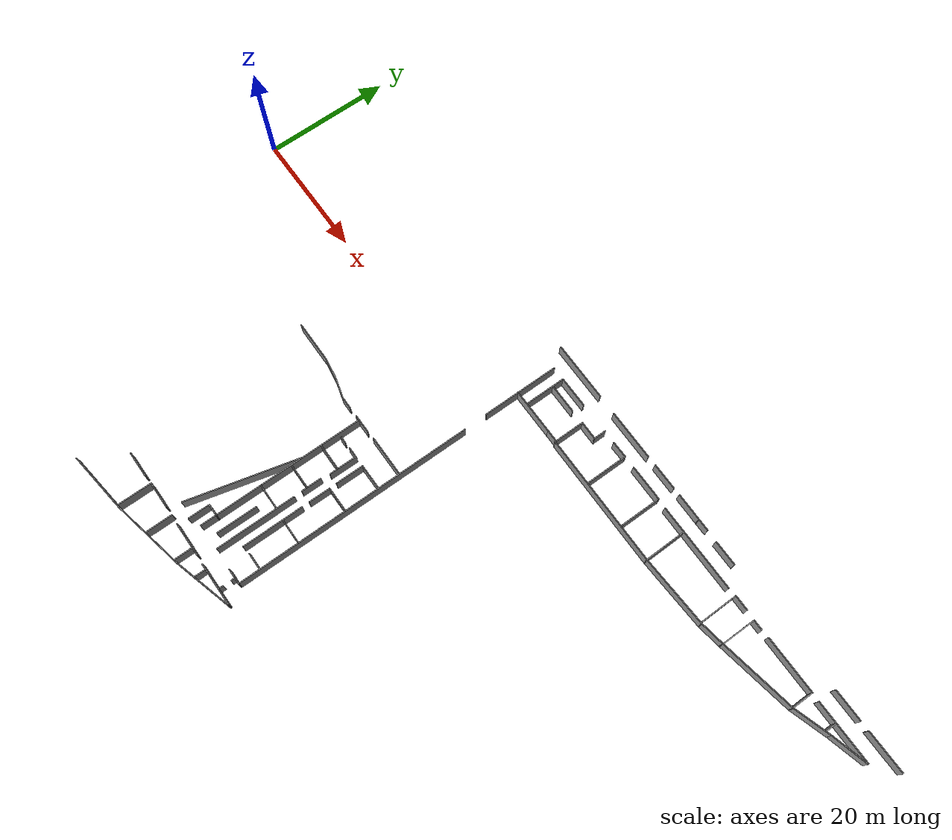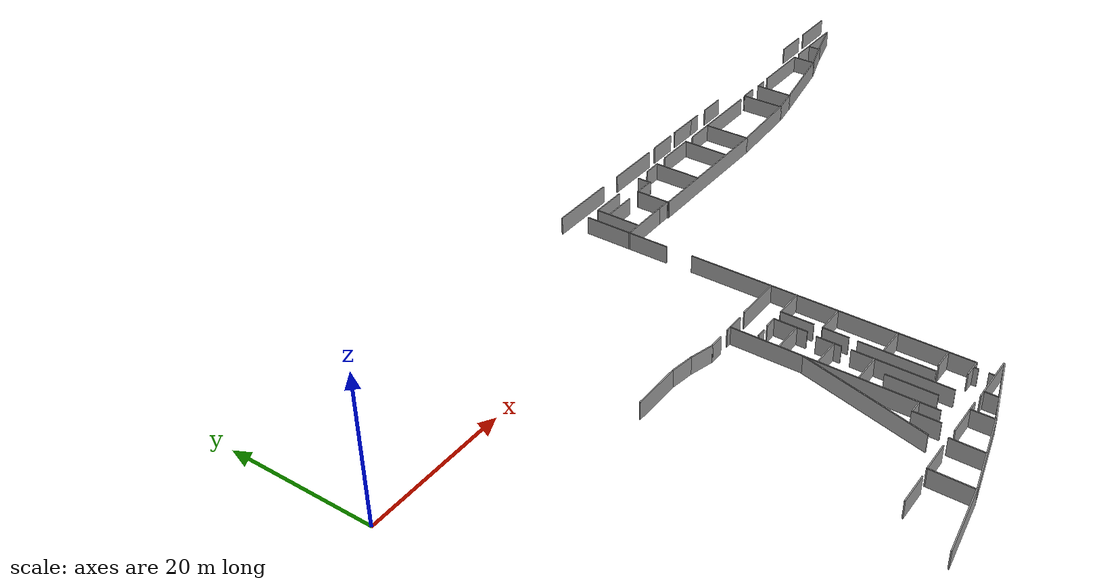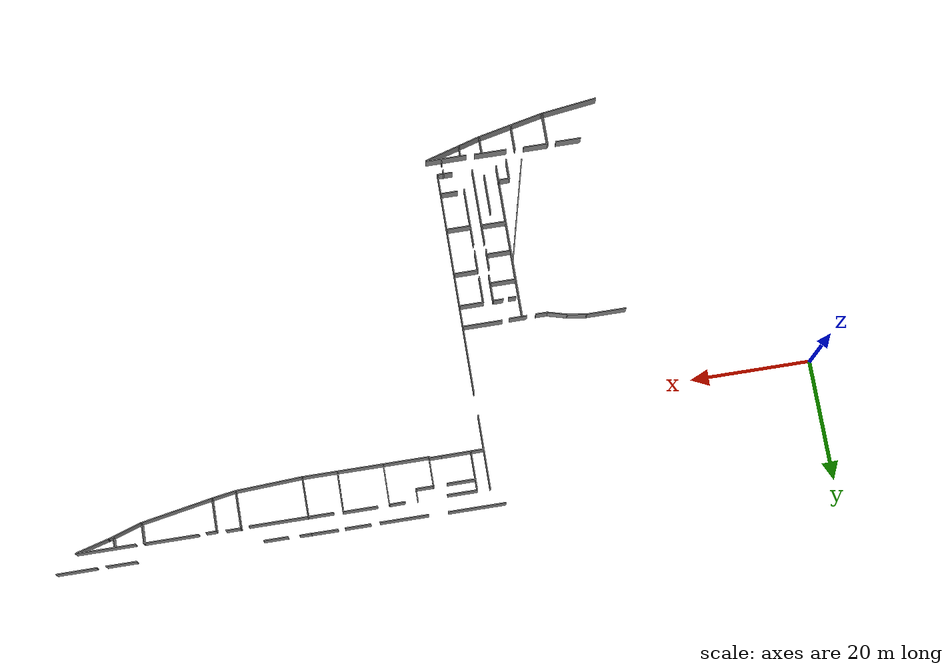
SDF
<sdf version="1.6">
 <model name="ensta_portes">
  <pose>1.28297 8.11006 0 0 -0 0</pose>
  <link name="Wall_101">
   <collision name="Wall_101_Collision">
    <geometry><box><size>9.75 0.15 2.5</size></box></geometry>
    <pose>0 0 1.25 0 -0 0</pose>
   </collision>
   <visual name="Wall_101_Visual">
    <pose>0 0 1.25 0 -0 0</pose>
    <geometry><box><size>9.75 0.15 2.5</size></box></geometry>
    <material>
     <script><uri>file://media/materials/scripts/gazebo.material</uri><name>Gazebo/Grey</name></script>
     <ambient>1 1 1 1</ambient>
    </material>
    <meta><layer>0</layer></meta>
   </visual>
   <pose>88.9702 4.63615 0 0 -0 3.14159</pose>
  </link>
  <link name="Wall_102">
   <collision name="Wall_102_Collision">
    <geometry><box><size>6.72494 0.15 2.5</size></box></geometry>
    <pose>0 0 1.25 0 -0 0</pose>
   </collision>
   <visual name="Wall_102_Visual">
    <pose>0 0 1.25 0 -0 0</pose>
    <geometry><box><size>6.72494 0.15 2.5</size></box></geometry>
    <material>
     <script><uri>file://media/materials/scripts/gazebo.material</uri><name>Gazebo/Grey</name></script>
     <ambient>1 1 1 1</ambient>
    </material>
    <meta><layer>0</layer></meta>
   </visual>
   <pose>84.207 1.34889 0 0 -0 -1.5596</pose>
  </link>
  <link name="Wall_104">
   <collision name="Wall_104_Collision">
    <geometry><box><size>4.25 0.15 2.5</size></box></geometry>
    <pose>0 0 1.25 0 -0 0</pose>
   </collision>
   <visual name="Wall_104_Visual">
    <pose>0 0 1.25 0 -0 0</pose>
    <geometry><box><size>4.25 0.15 2.5</size></box></geometry>
    <material>
     <script><uri>file://media/materials/scripts/gazebo.material</uri><name>Gazebo/Grey</name></script>
     <ambient>1 1 1 1</ambient>
    </material>
    <meta><layer>0</layer></meta>
   </visual>
   <pose>82.1202 4.63615 0 0 -0 0</pose>
  </link>
  <link name="Wall_106">
   <collision name="Wall_106_Collision">
    <geometry><box><size>6.70303 0.15 2.5</size></box></geometry>
    <pose>0 0 1.25 0 -0 0</pose>
   </collision>
   <visual name="Wall_106_Visual">
    <pose>0 0 1.25 0 -0 0</pose>
    <geometry><box><size>6.70303 0.15 2.5</size></box></geometry>
    <material>
     <script><uri>file://media/materials/scripts/gazebo.material</uri><name>Gazebo/Grey</name></script>
     <ambient>1 1 1 1</ambient>
    </material>
    <meta><layer>0</layer></meta>
   </visual>
   <pose>78.4731 1.45917 0 0 -0 -1.57204</pose>
  </link>
  <link name="Wall_1066">
   <collision name="Wall_1066_Collision">
    <geometry><box><size>3.5 0.15 2.5</size></box></geometry>
    <pose>0 0 1.25 0 -0 0</pose>
   </collision>
   <visual name="Wall_1066_Visual">
    <pose>0 0 1.25 0 -0 0</pose>
    <geometry><box><size>3.5 0.15 2.5</size></box></geometry>
    <material>
     <script><uri>file://media/materials/scripts/gazebo.material</uri><name>Gazebo/Grey</name></script>
     <ambient>1 1 1 1</ambient>
    </material>
    <meta><layer>0</layer></meta>
   </visual>
   <pose>42.6595 -48.2377 0 0 -0 1.5708</pose>
  </link>
  <link name="Wall_1067">
   <collision name="Wall_1067_Collision">
    <geometry><box><size>2 0.15 2.5</size></box></geometry>
    <pose>0 0 1.25 0 -0 0</pose>
   </collision>
   <visual name="Wall_1067_Visual">
    <pose>0 0 1.25 0 -0 0</pose>
    <geometry><box><size>2 0.15 2.5</size></box></geometry>
    <material>
     <script><uri>file://media/materials/scripts/gazebo.material</uri><name>Gazebo/Grey</name></script>
     <ambient>1 1 1 1</ambient>
    </material>
    <meta><layer>0</layer></meta>
   </visual>
   <pose>43.5845 -46.5627 0 0 -0 0</pose>
  </link>
  <link name="Wall_1075">
   <collision name="Wall_1075_Collision">
    <geometry><box><size>6.75 0.15 2.5</size></box></geometry>
    <pose>0 0 1.25 0 -0 0</pose>
   </collision>
   <visual name="Wall_1075_Visual">
    <pose>0 0 1.25 0 -0 0</pose>
    <geometry><box><size>6.75 0.15 2.5</size></box></geometry>
    <material>
     <script><uri>file://media/materials/scripts/gazebo.material</uri><name>Gazebo/Grey</name></script>
     <ambient>1 1 1 1</ambient>
    </material>
    <meta><layer>0</layer></meta>
   </visual>
   <pose>30.6646 -21.3885 0 0 -0 0</pose>
  </link>
  <link name="Wall_1076">
   <collision name="Wall_1076_Collision">
    <geometry><box><size>3.31381 0.15 2.5</size></box></geometry>
    <pose>0 0 1.25 0 -0 0</pose>
   </collision>
   <visual name="Wall_1076_Visual">
    <pose>0 0 1.25 0 -0 0</pose>
    <geometry><box><size>3.31381 0.15 2.5</size></box></geometry>
    <material>
     <script><uri>file://media/materials/scripts/gazebo.material</uri><name>Gazebo/Grey</name></script>
     <ambient>1 1 1 1</ambient>
    </material>
    <meta><layer>0</layer></meta>
   </visual>
   <pose>35.5289 -21.6239 0 0 -0 -0.149343</pose>
  </link>
  <link name="Wall_1077">
   <collision name="Wall_1077_Collision">
    <geometry><box><size>3.5 0.15 2.5</size></box></geometry>
    <pose>0 0 1.25 0 -0 0</pose>
   </collision>
   <visual name="Wall_1077_Visual">
    <pose>0 0 1.25 0 -0 0</pose>
    <geometry><box><size>3.5 0.15 2.5</size></box></geometry>
    <material>
     <script><uri>file://media/materials/scripts/gazebo.material</uri><name>Gazebo/Grey</name></script>
     <ambient>1 1 1 1</ambient>
    </material>
    <meta><layer>0</layer></meta>
   </visual>
   <pose>38.7111 -22.2928 0 0 -0 -0.261799</pose>
  </link>
  <link name="Wall_1078">
   <collision name="Wall_1078_Collision">
    <geometry><box><size>2 0.15 2.5</size></box></geometry>
    <pose>0 0 1.25 0 -0 0</pose>
   </collision>
   <visual name="Wall_1078_Visual">
    <pose>0 0 1.25 0 -0 0</pose>
    <geometry><box><size>2 0.15 2.5</size></box></geometry>
    <material>
     <script><uri>file://media/materials/scripts/gazebo.material</uri><name>Gazebo/Grey</name></script>
     <ambient>1 1 1 1</ambient>
    </material>
    <meta><layer>0</layer></meta>
   </visual>
   <pose>41.254 -22.7263 0 0 -0 0</pose>
  </link>
  <link name="Wall_108">
   <collision name="Wall_108_Collision">
    <geometry><box><size>5.75 0.15 2.5</size></box></geometry>
    <pose>0 0 1.25 0 -0 0</pose>
   </collision>
   <visual name="Wall_108_Visual">
    <pose>0 0 1.25 0 -0 0</pose>
    <geometry><box><size>5.75 0.15 2.5</size></box></geometry>
    <material>
     <script><uri>file://media/materials/scripts/gazebo.material</uri><name>Gazebo/Grey</name></script>
     <ambient>1 1 1 1</ambient>
    </material>
    <meta><layer>0</layer></meta>
   </visual>
   <pose>75.6832 4.74238 0 0 -0 0</pose>
  </link>
  <link name="Wall_1080">
   <collision name="Wall_1080_Collision">
    <geometry><box><size>3 0.15 2.5</size></box></geometry>
    <pose>0 0 1.25 0 -0 0</pose>
   </collision>
   <visual name="Wall_1080_Visual">
    <pose>0 0 1.25 0 -0 0</pose>
    <geometry><box><size>3 0.15 2.5</size></box></geometry>
    <material>
     <script><uri>file://media/materials/scripts/gazebo.material</uri><name>Gazebo/Grey</name></script>
     <ambient>1 1 1 1</ambient>
    </material>
    <meta><layer>0</layer></meta>
   </visual>
   <pose>45.2174 -22.6893 0 0 -0 0</pose>
  </link>
  <link name="Wall_1082">
   <collision name="Wall_1082_Collision">
    <geometry><box><size>6.60848 0.15 2.5</size></box></geometry>
    <pose>0 0 1.25 0 -0 0</pose>
   </collision>
   <visual name="Wall_1082_Visual">
    <pose>0 0 1.25 0 -0 0</pose>
    <geometry><box><size>6.60848 0.15 2.5</size></box></geometry>
    <material>
     <script><uri>file://media/materials/scripts/gazebo.material</uri><name>Gazebo/Grey</name></script>
     <ambient>1 1 1 1</ambient>
    </material>
    <meta><layer>0</layer></meta>
   </visual>
   <pose>51.1581 -22.5651 0 0 -0 0.001513</pose>
  </link>
  <link name="Wall_1084">
   <collision name="Wall_1084_Collision">
    <geometry><box><size>26.5 0.15 2.5</size></box></geometry>
    <pose>0 0 1.25 0 -0 0</pose>
   </collision>
   <visual name="Wall_1084_Visual">
    <pose>0 0 1.25 0 -0 0</pose>
    <geometry><box><size>26.5 0.15 2.5</size></box></geometry>
    <material>
     <script><uri>file://media/materials/scripts/gazebo.material</uri><name>Gazebo/Grey</name></script>
     <ambient>1 1 1 1</ambient>
    </material>
    <meta><layer>0</layer></meta>
   </visual>
   <pose>44.4853 -35.8682 0 0 -0 -1.5708</pose>
  </link>
  <link name="Wall_1093">
   <collision name="Wall_1093_Collision">
    <geometry><box><size>17.7938 0.15 2.5</size></box></geometry>
    <pose>0 0 1.25 0 -0 0</pose>
   </collision>
   <visual name="Wall_1093_Visual">
    <pose>0 0 1.25 0 -0 0</pose>
    <geometry><box><size>17.7938 0.15 2.5</size></box></geometry>
    <material>
     <script><uri>file://media/materials/scripts/gazebo.material</uri><name>Gazebo/Grey</name></script>
     <ambient>1 1 1 1</ambient>
    </material>
    <meta><layer>0</layer></meta>
   </visual>
   <pose>42.2596 -40.9274 0 0 -0 1.32254</pose>
  </link>
  <link name="Wall_1095">
   <collision name="Wall_1095_Collision">
    <geometry><box><size>1.25 0.15 2.5</size></box></geometry>
    <pose>0 0 1.25 0 -0 0</pose>
   </collision>
   <visual name="Wall_1095_Visual">
    <pose>0 0 1.25 0 -0 0</pose>
    <geometry><box><size>1.25 0.15 2.5</size></box></geometry>
    <material>
     <script><uri>file://media/materials/scripts/gazebo.material</uri><name>Gazebo/Grey</name></script>
     <ambient>1 1 1 1</ambient>
    </material>
    <meta><layer>0</layer></meta>
   </visual>
   <pose>45.5778 -26.1886 0 0 -0 0</pose>
  </link>
  <link name="Wall_1097">
   <collision name="Wall_1097_Collision">
    <geometry><box><size>1.75 0.15 2.5</size></box></geometry>
    <pose>0 0 1.25 0 -0 0</pose>
   </collision>
   <visual name="Wall_1097_Visual">
    <pose>0 0 1.25 0 -0 0</pose>
    <geometry><box><size>1.75 0.15 2.5</size></box></geometry>
    <material>
     <script><uri>file://media/materials/scripts/gazebo.material</uri><name>Gazebo/Grey</name></script>
     <ambient>1 1 1 1</ambient>
    </material>
    <meta><layer>0</layer></meta>
   </visual>
   <pose>47.9721 -26.1195 0 0 -0 0</pose>
  </link>
  <link name="Wall_1098">
   <collision name="Wall_1098_Collision">
    <geometry><box><size>4.5 0.15 2.5</size></box></geometry>
    <pose>0 0 1.25 0 -0 0</pose>
   </collision>
   <visual name="Wall_1098_Visual">
    <pose>0 0 1.25 0 -0 0</pose>
    <geometry><box><size>4.5 0.15 2.5</size></box></geometry>
    <material>
     <script><uri>file://media/materials/scripts/gazebo.material</uri><name>Gazebo/Grey</name></script>
     <ambient>1 1 1 1</ambient>
    </material>
    <meta><layer>0</layer></meta>
   </visual>
   <pose>48.7721 -28.2945 0 0 -0 -1.5708</pose>
  </link>
  <link name="Wall_110">
   <collision name="Wall_110_Collision">
    <geometry><box><size>6.75 0.15 2.5</size></box></geometry>
    <pose>0 0 1.25 0 -0 0</pose>
   </collision>
   <visual name="Wall_110_Visual">
    <pose>0 0 1.25 0 -0 0</pose>
    <geometry><box><size>6.75 0.15 2.5</size></box></geometry>
    <material>
     <script><uri>file://media/materials/scripts/gazebo.material</uri><name>Gazebo/Grey</name></script>
     <ambient>1 1 1 1</ambient>
    </material>
    <meta><layer>0</layer></meta>
   </visual>
   <pose>70.9148 1.44238 0 0 -0 -1.5708</pose>
  </link>
  <link name="Wall_1100">
   <collision name="Wall_1100_Collision">
    <geometry><box><size>4.25 0.15 2.5</size></box></geometry>
    <pose>0 0 1.25 0 -0 0</pose>
   </collision>
   <visual name="Wall_1100_Visual">
    <pose>0 0 1.25 0 -0 0</pose>
    <geometry><box><size>4.25 0.15 2.5</size></box></geometry>
    <material>
     <script><uri>file://media/materials/scripts/gazebo.material</uri><name>Gazebo/Grey</name></script>
     <ambient>1 1 1 1</ambient>
    </material>
    <meta><layer>0</layer></meta>
   </visual>
   <pose>46.6352 -29.1631 0 0 -0 0</pose>
  </link>
  <link name="Wall_1102">
   <collision name="Wall_1102_Collision">
    <geometry><box><size>3.25 0.15 2.5</size></box></geometry>
    <pose>0 0 1.25 0 -0 0</pose>
   </collision>
   <visual name="Wall_1102_Visual">
    <pose>0 0 1.25 0 -0 0</pose>
    <geometry><box><size>3.25 0.15 2.5</size></box></geometry>
    <material>
     <script><uri>file://media/materials/scripts/gazebo.material</uri><name>Gazebo/Grey</name></script>
     <ambient>1 1 1 1</ambient>
    </material>
    <meta><layer>0</layer></meta>
   </visual>
   <pose>48.5365 -33.4612 0 0 -0 -1.5708</pose>
  </link>
  <link name="Wall_1104">
   <collision name="Wall_1104_Collision">
    <geometry><box><size>4 0.15 2.5</size></box></geometry>
    <pose>0 0 1.25 0 -0 0</pose>
   </collision>
   <visual name="Wall_1104_Visual">
    <pose>0 0 1.25 0 -0 0</pose>
    <geometry><box><size>4 0.15 2.5</size></box></geometry>
    <material>
     <script><uri>file://media/materials/scripts/gazebo.material</uri><name>Gazebo/Grey</name></script>
     <ambient>1 1 1 1</ambient>
    </material>
    <meta><layer>0</layer></meta>
   </visual>
   <pose>46.5581 -34.1467 0 0 -0 0</pose>
  </link>
  <link name="Wall_1106">
   <collision name="Wall_1106_Collision">
    <geometry><box><size>12.75 0.15 2.5</size></box></geometry>
    <pose>0 0 1.25 0 -0 0</pose>
   </collision>
   <visual name="Wall_1106_Visual">
    <pose>0 0 1.25 0 -0 0</pose>
    <geometry><box><size>12.75 0.15 2.5</size></box></geometry>
    <material>
     <script><uri>file://media/materials/scripts/gazebo.material</uri><name>Gazebo/Grey</name></script>
     <ambient>1 1 1 1</ambient>
    </material>
    <meta><layer>0</layer></meta>
   </visual>
   <pose>48.5793 -42.6606 0 0 -0 -1.5708</pose>
  </link>
  <link name="Wall_1108">
   <collision name="Wall_1108_Collision">
    <geometry><box><size>4.21412 0.15 2.5</size></box></geometry>
    <pose>0 0 1.25 0 -0 0</pose>
   </collision>
   <visual name="Wall_1108_Visual">
    <pose>0 0 1.25 0 -0 0</pose>
    <geometry><box><size>4.21412 0.15 2.5</size></box></geometry>
    <material>
     <script><uri>file://media/materials/scripts/gazebo.material</uri><name>Gazebo/Grey</name></script>
     <ambient>1 1 1 1</ambient>
    </material>
    <meta><layer>0</layer></meta>
   </visual>
   <pose>46.5332 -39.24 0 0 -0 0.0008</pose>
  </link>
  <link name="Wall_1110">
   <collision name="Wall_1110_Collision">
    <geometry><box><size>6.5 0.15 2.5</size></box></geometry>
    <pose>0 0 1.25 0 -0 0</pose>
   </collision>
   <visual name="Wall_1110_Visual">
    <pose>0 0 1.25 0 -0 0</pose>
    <geometry><box><size>6.5 0.15 2.5</size></box></geometry>
    <material>
     <script><uri>file://media/materials/scripts/gazebo.material</uri><name>Gazebo/Grey</name></script>
     <ambient>1 1 1 1</ambient>
    </material>
    <meta><layer>0</layer></meta>
   </visual>
   <pose>46.7259 -44.5864 0 0 -0 -1.5708</pose>
  </link>
  <link name="Wall_1114">
   <collision name="Wall_1114_Collision">
    <geometry><box><size>4.5 0.15 2.5</size></box></geometry>
    <pose>0 0 1.25 0 -0 0</pose>
   </collision>
   <visual name="Wall_1114_Visual">
    <pose>0 0 1.25 0 -0 0</pose>
    <geometry><box><size>4.5 0.15 2.5</size></box></geometry>
    <material>
     <script><uri>file://media/materials/scripts/gazebo.material</uri><name>Gazebo/Grey</name></script>
     <ambient>1 1 1 1</ambient>
    </material>
    <meta><layer>0</layer></meta>
   </visual>
   <pose>50.4353 -28.2859 0 0 -0 -1.5708</pose>
  </link>
  <link name="Wall_1116">
   <collision name="Wall_1116_Collision">
    <geometry><box><size>4.13648 0.15 2.5</size></box></geometry>
    <pose>0 0 1.25 0 -0 0</pose>
   </collision>
   <visual name="Wall_1116_Visual">
    <pose>0 0 1.25 0 -0 0</pose>
    <geometry><box><size>4.13648 0.15 2.5</size></box></geometry>
    <material>
     <script><uri>file://media/materials/scripts/gazebo.material</uri><name>Gazebo/Grey</name></script>
     <ambient>1 1 1 1</ambient>
    </material>
    <meta><layer>0</layer></meta>
   </visual>
   <pose>52.4286 -26.107 0 0 -0 0.001968</pose>
  </link>
  <link name="Wall_1118">
   <collision name="Wall_1118_Collision">
    <geometry><box><size>3.5 0.15 2.5</size></box></geometry>
    <pose>0 0 1.25 0 -0 0</pose>
   </collision>
   <visual name="Wall_1118_Visual">
    <pose>0 0 1.25 0 -0 0</pose>
    <geometry><box><size>3.5 0.15 2.5</size></box></geometry>
    <material>
     <script><uri>file://media/materials/scripts/gazebo.material</uri><name>Gazebo/Grey</name></script>
     <ambient>1 1 1 1</ambient>
    </material>
    <meta><layer>0</layer></meta>
   </visual>
   <pose>50.4589 -33.3501 0 0 -0 -1.5708</pose>
  </link>
  <link name="Wall_112">
   <collision name="Wall_112_Collision">
    <geometry><box><size>2.67528 0.15 2.5</size></box></geometry>
    <pose>0 0 1.25 0 -0 0</pose>
   </collision>
   <visual name="Wall_112_Visual">
    <pose>0 0 1.25 0 -0 0</pose>
    <geometry><box><size>2.67528 0.15 2.5</size></box></geometry>
    <material>
     <script><uri>file://media/materials/scripts/gazebo.material</uri><name>Gazebo/Grey</name></script>
     <ambient>1 1 1 1</ambient>
    </material>
    <meta><layer>0</layer></meta>
   </visual>
   <pose>69.6521 4.7338 0 0 -0 0.006801</pose>
  </link>
  <link name="Wall_1120">
   <collision name="Wall_1120_Collision">
    <geometry><box><size>4.11885 0.15 2.5</size></box></geometry>
    <pose>0 0 1.25 0 -0 0</pose>
   </collision>
   <visual name="Wall_1120_Visual">
    <pose>0 0 1.25 0 -0 0</pose>
    <geometry><box><size>4.11885 0.15 2.5</size></box></geometry>
    <material>
     <script><uri>file://media/materials/scripts/gazebo.material</uri><name>Gazebo/Grey</name></script>
     <ambient>1 1 1 1</ambient>
    </material>
    <meta><layer>0</layer></meta>
   </visual>
   <pose>52.4433 -31.6691 0 0 -0 0.003018</pose>
  </link>
  <link name="Wall_1122">
   <collision name="Wall_1122_Collision">
    <geometry><box><size>9.75 0.15 2.5</size></box></geometry>
    <pose>0 0 1.25 0 -0 0</pose>
   </collision>
   <visual name="Wall_1122_Visual">
    <pose>0 0 1.25 0 -0 0</pose>
    <geometry><box><size>9.75 0.15 2.5</size></box></geometry>
    <material>
     <script><uri>file://media/materials/scripts/gazebo.material</uri><name>Gazebo/Grey</name></script>
     <ambient>1 1 1 1</ambient>
    </material>
    <meta><layer>0</layer></meta>
   </visual>
   <pose>50.45 -41.0635 0 0 -0 -1.5708</pose>
  </link>
  <link name="Wall_1124">
   <collision name="Wall_1124_Collision">
    <geometry><box><size>4 0.15 2.5</size></box></geometry>
    <pose>0 0 1.25 0 -0 0</pose>
   </collision>
   <visual name="Wall_1124_Visual">
    <pose>0 0 1.25 0 -0 0</pose>
    <geometry><box><size>4 0.15 2.5</size></box></geometry>
    <material>
     <script><uri>file://media/materials/scripts/gazebo.material</uri><name>Gazebo/Grey</name></script>
     <ambient>1 1 1 1</ambient>
    </material>
    <meta><layer>0</layer></meta>
   </visual>
   <pose>52.4539 -39.4196 0 0 -0 0</pose>
  </link>
  <link name="Wall_1126">
   <collision name="Wall_1126_Collision">
    <geometry><box><size>2.75 0.15 2.5</size></box></geometry>
    <pose>0 0 1.25 0 -0 0</pose>
   </collision>
   <visual name="Wall_1126_Visual">
    <pose>0 0 1.25 0 -0 0</pose>
    <geometry><box><size>2.75 0.15 2.5</size></box></geometry>
    <material>
     <script><uri>file://media/materials/scripts/gazebo.material</uri><name>Gazebo/Grey</name></script>
     <ambient>1 1 1 1</ambient>
    </material>
    <meta><layer>0</layer></meta>
   </visual>
   <pose>53.0322 -45.7027 0 0 -0 0</pose>
  </link>
  <link name="Wall_1128">
   <collision name="Wall_1128_Collision">
    <geometry><box><size>2.5927 0.15 2.5</size></box></geometry>
    <pose>0 0 1.25 0 -0 0</pose>
   </collision>
   <visual name="Wall_1128_Visual">
    <pose>0 0 1.25 0 -0 0</pose>
    <geometry><box><size>2.5927 0.15 2.5</size></box></geometry>
    <material>
     <script><uri>file://media/materials/scripts/gazebo.material</uri><name>Gazebo/Grey</name></script>
     <ambient>1 1 1 1</ambient>
    </material>
    <meta><layer>0</layer></meta>
   </visual>
   <pose>53.2231 -49.0909 0 0 -0 -0.00931</pose>
  </link>
  <link name="Wall_1130">
   <collision name="Wall_1130_Collision">
    <geometry><box><size>0.75 0.15 2.5</size></box></geometry>
    <pose>0 0 1.25 0 -0 0</pose>
   </collision>
   <visual name="Wall_1130_Visual">
    <pose>0 0 1.25 0 -0 0</pose>
    <geometry><box><size>0.75 0.15 2.5</size></box></geometry>
    <material>
     <script><uri>file://media/materials/scripts/gazebo.material</uri><name>Gazebo/Grey</name></script>
     <ambient>1 1 1 1</ambient>
    </material>
    <meta><layer>0</layer></meta>
   </visual>
   <pose>53.4575 -49.3775 0 0 -0 -1.5708</pose>
  </link>
  <link name="Wall_1134">
   <collision name="Wall_1134_Collision">
    <geometry><box><size>0.75 0.15 2.5</size></box></geometry>
    <pose>0 0 1.25 0 -0 0</pose>
   </collision>
   <visual name="Wall_1134_Visual">
    <pose>0 0 1.25 0 -0 0</pose>
    <geometry><box><size>0.75 0.15 2.5</size></box></geometry>
    <material>
     <script><uri>file://media/materials/scripts/gazebo.material</uri><name>Gazebo/Grey</name></script>
     <ambient>1 1 1 1</ambient>
    </material>
    <meta><layer>0</layer></meta>
   </visual>
   <pose>53.4489 -51.3339 0 0 -0 1.5708</pose>
  </link>
  <link name="Wall_114">
   <collision name="Wall_114_Collision">
    <geometry><box><size>2 0.15 2.5</size></box></geometry>
    <pose>0 0 1.25 0 -0 0</pose>
   </collision>
   <visual name="Wall_114_Visual">
    <pose>0 0 1.25 0 -0 0</pose>
    <geometry><box><size>2 0.15 2.5</size></box></geometry>
    <material>
     <script><uri>file://media/materials/scripts/gazebo.material</uri><name>Gazebo/Grey</name></script>
     <ambient>1 1 1 1</ambient>
    </material>
    <meta><layer>0</layer></meta>
   </visual>
   <pose>66.2701 3.82254 0 0 -0 -1.5708</pose>
  </link>
  <link name="Wall_1146">
   <collision name="Wall_1146_Collision">
    <geometry><box><size>4.75 0.15 2.5</size></box></geometry>
    <pose>0 0 1.25 0 -0 0</pose>
   </collision>
   <visual name="Wall_1146_Visual">
    <pose>0 0 1.25 0 -0 0</pose>
    <geometry><box><size>4.75 0.15 2.5</size></box></geometry>
    <material>
     <script><uri>file://media/materials/scripts/gazebo.material</uri><name>Gazebo/Grey</name></script>
     <ambient>1 1 1 1</ambient>
    </material>
    <meta><layer>0</layer></meta>
   </visual>
   <pose>58.8435 2.84296 0 0 -0 0</pose>
  </link>
  <link name="Wall_1148">
   <collision name="Wall_1148_Collision">
    <geometry><box><size>2.12032 0.15 2.5</size></box></geometry>
    <pose>0 0 1.25 0 -0 0</pose>
   </collision>
   <visual name="Wall_1148_Visual">
    <pose>0 0 1.25 0 -0 0</pose>
    <geometry><box><size>2.12032 0.15 2.5</size></box></geometry>
    <material>
     <script><uri>file://media/materials/scripts/gazebo.material</uri><name>Gazebo/Grey</name></script>
     <ambient>1 1 1 1</ambient>
    </material>
    <meta><layer>0</layer></meta>
   </visual>
   <pose>62.4015 -1.77315 0 0 -0 0.003956</pose>
  </link>
  <link name="Wall_115">
   <collision name="Wall_115_Collision">
    <geometry><box><size>3.0345 0.15 2.5</size></box></geometry>
    <pose>0 0 1.25 0 -0 0</pose>
   </collision>
   <visual name="Wall_115_Visual">
    <pose>0 0 1.25 0 -0 0</pose>
    <geometry><box><size>3.0345 0.15 2.5</size></box></geometry>
    <material>
     <script><uri>file://media/materials/scripts/gazebo.material</uri><name>Gazebo/Grey</name></script>
     <ambient>1 1 1 1</ambient>
    </material>
    <meta><layer>0</layer></meta>
   </visual>
   <pose>64.8164 2.89894 0 0 -0 3.14062</pose>
  </link>
  <link name="Wall_117">
   <collision name="Wall_117_Collision">
    <geometry><box><size>5 0.15 2.5</size></box></geometry>
    <pose>0 0 1.25 0 -0 0</pose>
   </collision>
   <visual name="Wall_117_Visual">
    <pose>0 0 1.25 0 -0 0</pose>
    <geometry><box><size>5 0.15 2.5</size></box></geometry>
    <material>
     <script><uri>file://media/materials/scripts/gazebo.material</uri><name>Gazebo/Grey</name></script>
     <ambient>1 1 1 1</ambient>
    </material>
    <meta><layer>0</layer></meta>
   </visual>
   <pose>58.9219 4.67639 0 0 -0 3.14159</pose>
  </link>
  <link name="Wall_118">
   <collision name="Wall_118_Collision">
    <geometry><box><size>6.5 0.15 2.5</size></box></geometry>
    <pose>0 0 1.25 0 -0 0</pose>
   </collision>
   <visual name="Wall_118_Visual">
    <pose>0 0 1.25 0 -0 0</pose>
    <geometry><box><size>6.5 0.15 2.5</size></box></geometry>
    <material>
     <script><uri>file://media/materials/scripts/gazebo.material</uri><name>Gazebo/Grey</name></script>
     <ambient>1 1 1 1</ambient>
    </material>
    <meta><layer>0</layer></meta>
   </visual>
   <pose>56.4969 1.50139 0 0 -0 -1.5708</pose>
  </link>
  <link name="Wall_120">
   <collision name="Wall_120_Collision">
    <geometry><box><size>7.20823 0.15 2.5</size></box></geometry>
    <pose>0 0 1.25 0 -0 0</pose>
   </collision>
   <visual name="Wall_120_Visual">
    <pose>0 0 1.25 0 -0 0</pose>
    <geometry><box><size>7.20823 0.15 2.5</size></box></geometry>
    <material>
     <script><uri>file://media/materials/scripts/gazebo.material</uri><name>Gazebo/Grey</name></script>
     <ambient>1 1 1 1</ambient>
    </material>
    <meta><layer>0</layer></meta>
   </visual>
   <pose>57.8872 -1.79203 0 0 -0 -3.13735</pose>
  </link>
  <link name="Wall_123">
   <collision name="Wall_123_Collision">
    <geometry><box><size>12.25 0.15 2.5</size></box></geometry>
    <pose>0 0 1.25 0 -0 0</pose>
   </collision>
   <visual name="Wall_123_Visual">
    <pose>0 0 1.25 0 -0 0</pose>
    <geometry><box><size>12.25 0.15 2.5</size></box></geometry>
    <material>
     <script><uri>file://media/materials/scripts/gazebo.material</uri><name>Gazebo/Grey</name></script>
     <ambient>1 1 1 1</ambient>
    </material>
    <meta><layer>0</layer></meta>
   </visual>
   <pose>54.3735 -1.38192 0 0 -0 -1.5708</pose>
  </link>
  <link name="Wall_125">
   <collision name="Wall_125_Collision">
    <geometry><box><size>38 0.15 2.5</size></box></geometry>
    <pose>0 0 1.25 0 -0 0</pose>
   </collision>
   <visual name="Wall_125_Visual">
    <pose>0 0 1.25 0 -0 0</pose>
    <geometry><box><size>38 0.15 2.5</size></box></geometry>
    <material>
     <script><uri>file://media/materials/scripts/gazebo.material</uri><name>Gazebo/Grey</name></script>
     <ambient>1 1 1 1</ambient>
    </material>
    <meta><layer>0</layer></meta>
   </visual>
   <pose>54.4443 -30.1773 0 0 -0 -1.5708</pose>
  </link>
  <link name="Wall_129">
   <collision name="Wall_129_Collision">
    <geometry><box><size>4 0.15 2.5</size></box></geometry>
    <pose>0 0 1.25 0 -0 0</pose>
   </collision>
   <visual name="Wall_129_Visual">
    <pose>0 0 1.25 0 -0 0</pose>
    <geometry><box><size>4 0.15 2.5</size></box></geometry>
    <material>
     <script><uri>file://media/materials/scripts/gazebo.material</uri><name>Gazebo/Grey</name></script>
     <ambient>1 1 1 1</ambient>
    </material>
    <meta><layer>0</layer></meta>
   </visual>
   <pose>89.8156 7.35342 0 0 -0 3.14159</pose>
  </link>
  <link name="Wall_131">
   <collision name="Wall_131_Collision">
    <geometry><box><size>2 0.15 2.5</size></box></geometry>
    <pose>0 0 1.25 0 -0 0</pose>
   </collision>
   <visual name="Wall_131_Visual">
    <pose>0 0 1.25 0 -0 0</pose>
    <geometry><box><size>2 0.15 2.5</size></box></geometry>
    <material>
     <script><uri>file://media/materials/scripts/gazebo.material</uri><name>Gazebo/Grey</name></script>
     <ambient>1 1 1 1</ambient>
    </material>
    <meta><layer>0</layer></meta>
   </visual>
   <pose>84.9553 7.43714 0 0 -0 3.14159</pose>
  </link>
  <link name="Wall_134">
   <collision name="Wall_134_Collision">
    <geometry><box><size>4.43154 0.15 2.5</size></box></geometry>
    <pose>0 0 1.25 0 -0 0</pose>
   </collision>
   <visual name="Wall_134_Visual">
    <pose>0 0 1.25 0 -0 0</pose>
    <geometry><box><size>4.43154 0.15 2.5</size></box></geometry>
    <material>
     <script><uri>file://media/materials/scripts/gazebo.material</uri><name>Gazebo/Grey</name></script>
     <ambient>1 1 1 1</ambient>
    </material>
    <meta><layer>0</layer></meta>
   </visual>
   <pose>81.8896 7.44527 0 0 -0 -0.003801</pose>
  </link>
  <link name="Wall_137">
   <collision name="Wall_137_Collision">
    <geometry><box><size>4.25 0.15 2.5</size></box></geometry>
    <pose>0 0 1.25 0 -0 0</pose>
   </collision>
   <visual name="Wall_137_Visual">
    <pose>0 0 1.25 0 -0 0</pose>
    <geometry><box><size>4.25 0.15 2.5</size></box></geometry>
    <material>
     <script><uri>file://media/materials/scripts/gazebo.material</uri><name>Gazebo/Grey</name></script>
     <ambient>1 1 1 1</ambient>
    </material>
    <meta><layer>0</layer></meta>
   </visual>
   <pose>76.4446 7.42923 0 0 -0 3.14159</pose>
  </link>
  <link name="Wall_141">
   <collision name="Wall_141_Collision">
    <geometry><box><size>8 0.15 2.5</size></box></geometry>
    <pose>0 0 1.25 0 -0 0</pose>
   </collision>
   <visual name="Wall_141_Visual">
    <pose>0 0 1.25 0 -0 0</pose>
    <geometry><box><size>8 0.15 2.5</size></box></geometry>
    <material>
     <script><uri>file://media/materials/scripts/gazebo.material</uri><name>Gazebo/Grey</name></script>
     <ambient>1 1 1 1</ambient>
    </material>
    <meta><layer>0</layer></meta>
   </visual>
   <pose>68.8798 7.39756 0 0 -0 3.14159</pose>
  </link>
  <link name="Wall_145">
   <collision name="Wall_145_Collision">
    <geometry><box><size>9.5 0.15 2.5</size></box></geometry>
    <pose>0 0 1.25 0 -0 0</pose>
   </collision>
   <visual name="Wall_145_Visual">
    <pose>0 0 1.25 0 -0 0</pose>
    <geometry><box><size>9.5 0.15 2.5</size></box></geometry>
    <material>
     <script><uri>file://media/materials/scripts/gazebo.material</uri><name>Gazebo/Grey</name></script>
     <ambient>1 1 1 1</ambient>
    </material>
    <meta><layer>0</layer></meta>
   </visual>
   <pose>56.9856 7.45179 0 0 -0 3.14159</pose>
  </link>
  <link name="Wall_70">
   <collision name="Wall_70_Collision">
    <geometry><box><size>5 0.15 2.5</size></box></geometry>
    <pose>0 0 1.25 0 -0 0</pose>
   </collision>
   <visual name="Wall_70_Visual">
    <pose>0 0 1.25 0 -0 0</pose>
    <geometry><box><size>5 0.15 2.5</size></box></geometry>
    <material>
     <script><uri>file://media/materials/scripts/gazebo.material</uri><name>Gazebo/Grey</name></script>
     <ambient>1 1 1 1</ambient>
    </material>
    <meta><layer>0</layer></meta>
   </visual>
   <pose>114.866 7.45477 0 0 -0 0</pose>
  </link>
  <link name="Wall_73">
   <collision name="Wall_73_Collision">
    <geometry><box><size>6.61126 0.15 2.5</size></box></geometry>
    <pose>0 0 1.25 0 -0 0</pose>
   </collision>
   <visual name="Wall_73_Visual">
    <pose>0 0 1.25 0 -0 0</pose>
    <geometry><box><size>6.61126 0.15 2.5</size></box></geometry>
    <material>
     <script><uri>file://media/materials/scripts/gazebo.material</uri><name>Gazebo/Grey</name></script>
     <ambient>1 1 1 1</ambient>
    </material>
    <meta><layer>0</layer></meta>
   </visual>
   <pose>122.153 7.47312 0 0 -0 0.00358</pose>
  </link>
  <link name="Wall_76">
   <collision name="Wall_76_Collision">
    <geometry><box><size>9.75 0.15 2.5</size></box></geometry>
    <pose>0 0 1.25 0 -0 0</pose>
   </collision>
   <visual name="Wall_76_Visual">
    <pose>0 0 1.25 0 -0 0</pose>
    <geometry><box><size>9.75 0.15 2.5</size></box></geometry>
    <material>
     <script><uri>file://media/materials/scripts/gazebo.material</uri><name>Gazebo/Grey</name></script>
     <ambient>1 1 1 1</ambient>
    </material>
    <meta><layer>0</layer></meta>
   </visual>
   <pose>117.099 4.65675 0 0 -0 0</pose>
  </link>
  <link name="Wall_78">
   <collision name="Wall_78_Collision">
    <geometry><box><size>3.5 0.15 2.5</size></box></geometry>
    <pose>0 0 1.25 0 -0 0</pose>
   </collision>
   <visual name="Wall_78_Visual">
    <pose>0 0 1.25 0 -0 0</pose>
    <geometry><box><size>3.5 0.15 2.5</size></box></geometry>
    <material>
     <script><uri>file://media/materials/scripts/gazebo.material</uri><name>Gazebo/Grey</name></script>
     <ambient>1 1 1 1</ambient>
    </material>
    <meta><layer>0</layer></meta>
   </visual>
   <pose>110.9 3.03422 0 0 -0 -1.5708</pose>
  </link>
  <link name="Wall_791">
   <collision name="Wall_791_Collision">
    <geometry><box><size>9.83456 0.15 2.5</size></box></geometry>
    <pose>0 0 1.25 0 -0 0</pose>
   </collision>
   <visual name="Wall_791_Visual">
    <pose>0 0 1.25 0 -0 0</pose>
    <geometry><box><size>9.83456 0.15 2.5</size></box></geometry>
    <material>
     <script><uri>file://media/materials/scripts/gazebo.material</uri><name>Gazebo/Grey</name></script>
     <ambient>1 1 1 1</ambient>
    </material>
    <meta><layer>0</layer></meta>
   </visual>
   <pose>30.7723 -57.5918 0 0 -0 0.131928</pose>
  </link>
  <link name="Wall_793">
   <collision name="Wall_793_Collision">
    <geometry><box><size>11.5109 0.15 2.5</size></box></geometry>
    <pose>0 0 1.25 0 -0 0</pose>
   </collision>
   <visual name="Wall_793_Visual">
    <pose>0 0 1.25 0 -0 0</pose>
    <geometry><box><size>11.5109 0.15 2.5</size></box></geometry>
    <material>
     <script><uri>file://media/materials/scripts/gazebo.material</uri><name>Gazebo/Grey</name></script>
     <ambient>1 1 1 1</ambient>
    </material>
    <meta><layer>0</layer></meta>
   </visual>
   <pose>41.1226 -55.745 0 0 -0 0.214626</pose>
  </link>
  <link name="Wall_795">
   <collision name="Wall_795_Collision">
    <geometry><box><size>9.85526 0.15 2.5</size></box></geometry>
    <pose>0 0 1.25 0 -0 0</pose>
   </collision>
   <visual name="Wall_795_Visual">
    <pose>0 0 1.25 0 -0 0</pose>
    <geometry><box><size>9.85526 0.15 2.5</size></box></geometry>
    <material>
     <script><uri>file://media/materials/scripts/gazebo.material</uri><name>Gazebo/Grey</name></script>
     <ambient>1 1 1 1</ambient>
    </material>
    <meta><layer>0</layer></meta>
   </visual>
   <pose>51.3305 -53.1741 0 0 -0 0.284293</pose>
  </link>
  <link name="Wall_80">
   <collision name="Wall_80_Collision">
    <geometry><box><size>5.97182 0.15 2.5</size></box></geometry>
    <pose>0 0 1.25 0 -0 0</pose>
   </collision>
   <visual name="Wall_80_Visual">
    <pose>0 0 1.25 0 -0 0</pose>
    <geometry><box><size>5.97182 0.15 2.5</size></box></geometry>
    <material>
     <script><uri>file://media/materials/scripts/gazebo.material</uri><name>Gazebo/Grey</name></script>
     <ambient>1 1 1 1</ambient>
    </material>
    <meta><layer>0</layer></meta>
   </visual>
   <pose>113.672 2.24717 0 0 -0 0.309981</pose>
  </link>
  <link name="Wall_81">
   <collision name="Wall_81_Collision">
    <geometry><box><size>5.75 0.15 2.5</size></box></geometry>
    <pose>0 0 1.25 0 -0 0</pose>
   </collision>
   <visual name="Wall_81_Visual">
    <pose>0 0 1.25 0 -0 0</pose>
    <geometry><box><size>5.75 0.15 2.5</size></box></geometry>
    <material>
     <script><uri>file://media/materials/scripts/gazebo.material</uri><name>Gazebo/Grey</name></script>
     <ambient>1 1 1 1</ambient>
    </material>
    <meta><layer>0</layer></meta>
   </visual>
   <pose>119.149 3.85981 0 0 -0 0.261799</pose>
  </link>
  <link name="Wall_83">
   <collision name="Wall_83_Collision">
    <geometry><box><size>1.75 0.15 2.5</size></box></geometry>
    <pose>0 0 1.25 0 -0 0</pose>
   </collision>
   <visual name="Wall_83_Visual">
    <pose>0 0 1.25 0 -0 0</pose>
    <geometry><box><size>1.75 0.15 2.5</size></box></geometry>
    <material>
     <script><uri>file://media/materials/scripts/gazebo.material</uri><name>Gazebo/Grey</name></script>
     <ambient>1 1 1 1</ambient>
    </material>
    <meta><layer>0</layer></meta>
   </visual>
   <pose>115.663 3.83063 0 0 -0 -1.5708</pose>
  </link>
  <link name="Wall_85">
   <collision name="Wall_85_Collision">
    <geometry><box><size>9 0.15 2.5</size></box></geometry>
    <pose>0 0 1.25 0 -0 0</pose>
   </collision>
   <visual name="Wall_85_Visual">
    <pose>0 0 1.25 0 -0 0</pose>
    <geometry><box><size>9 0.15 2.5</size></box></geometry>
    <material>
     <script><uri>file://media/materials/scripts/gazebo.material</uri><name>Gazebo/Grey</name></script>
     <ambient>1 1 1 1</ambient>
    </material>
    <meta><layer>0</layer></meta>
   </visual>
   <pose>106.475 4.70922 0 0 -0 3.14159</pose>
  </link>
  <link name="Wall_87">
   <collision name="Wall_87_Collision">
    <geometry><box><size>1.75 0.15 2.5</size></box></geometry>
    <pose>0 0 1.25 0 -0 0</pose>
   </collision>
   <visual name="Wall_87_Visual">
    <pose>0 0 1.25 0 -0 0</pose>
    <geometry><box><size>1.75 0.15 2.5</size></box></geometry>
    <material>
     <script><uri>file://media/materials/scripts/gazebo.material</uri><name>Gazebo/Grey</name></script>
     <ambient>1 1 1 1</ambient>
    </material>
    <meta><layer>0</layer></meta>
   </visual>
   <pose>99.9252 4.61993 0 0 -0 3.14159</pose>
  </link>
  <link name="Wall_88">
   <collision name="Wall_88_Collision">
    <geometry><box><size>5.5 0.15 2.5</size></box></geometry>
    <pose>0 0 1.25 0 -0 0</pose>
   </collision>
   <visual name="Wall_88_Visual">
    <pose>0 0 1.25 0 -0 0</pose>
    <geometry><box><size>5.5 0.15 2.5</size></box></geometry>
    <material>
     <script><uri>file://media/materials/scripts/gazebo.material</uri><name>Gazebo/Grey</name></script>
     <ambient>1 1 1 1</ambient>
    </material>
    <meta><layer>0</layer></meta>
   </visual>
   <pose>99.1251 1.94493 0 0 -0 -1.5708</pose>
  </link>
  <link name="Wall_894">
   <collision name="Wall_894_Collision">
    <geometry><box><size>4.25 0.15 2.5</size></box></geometry>
    <pose>0 0 1.25 0 -0 0</pose>
   </collision>
   <visual name="Wall_894_Visual">
    <pose>0 0 1.25 0 -0 0</pose>
    <geometry><box><size>4.25 0.15 2.5</size></box></geometry>
    <material>
     <script><uri>file://media/materials/scripts/gazebo.material</uri><name>Gazebo/Grey</name></script>
     <ambient>1 1 1 1</ambient>
    </material>
    <meta><layer>0</layer></meta>
   </visual>
   <pose>31.7795 -51.6685 0 0 -0 0</pose>
  </link>
  <link name="Wall_896">
   <collision name="Wall_896_Collision">
    <geometry><box><size>5.5 0.15 2.5</size></box></geometry>
    <pose>0 0 1.25 0 -0 0</pose>
   </collision>
   <visual name="Wall_896_Visual">
    <pose>0 0 1.25 0 -0 0</pose>
    <geometry><box><size>5.5 0.15 2.5</size></box></geometry>
    <material>
     <script><uri>file://media/materials/scripts/gazebo.material</uri><name>Gazebo/Grey</name></script>
     <ambient>1 1 1 1</ambient>
    </material>
    <meta><layer>0</layer></meta>
   </visual>
   <pose>35.2639 -54.2429 0 0 -0 -1.5708</pose>
  </link>
  <link name="Wall_898">
   <collision name="Wall_898_Collision">
    <geometry><box><size>4.25 0.15 2.5</size></box></geometry>
    <pose>0 0 1.25 0 -0 0</pose>
   </collision>
   <visual name="Wall_898_Visual">
    <pose>0 0 1.25 0 -0 0</pose>
    <geometry><box><size>4.25 0.15 2.5</size></box></geometry>
    <material>
     <script><uri>file://media/materials/scripts/gazebo.material</uri><name>Gazebo/Grey</name></script>
     <ambient>1 1 1 1</ambient>
    </material>
    <meta><layer>0</layer></meta>
   </visual>
   <pose>37.3139 -51.5679 0 0 -0 0</pose>
  </link>
  <link name="Wall_90">
   <collision name="Wall_90_Collision">
    <geometry><box><size>12.176 0.15 2.5</size></box></geometry>
    <pose>0 0 1.25 0 -0 0</pose>
   </collision>
   <visual name="Wall_90_Visual">
    <pose>0 0 1.25 0 -0 0</pose>
    <geometry><box><size>12.176 0.15 2.5</size></box></geometry>
    <material>
     <script><uri>file://media/materials/scripts/gazebo.material</uri><name>Gazebo/Grey</name></script>
     <ambient>1 1 1 1</ambient>
    </material>
    <meta><layer>0</layer></meta>
   </visual>
   <pose>104.983 0.2877 0 0 -0 -2.96244</pose>
  </link>
  <link name="Wall_900">
   <collision name="Wall_900_Collision">
    <geometry><box><size>4.25 0.15 2.5</size></box></geometry>
    <pose>0 0 1.25 0 -0 0</pose>
   </collision>
   <visual name="Wall_900_Visual">
    <pose>0 0 1.25 0 -0 0</pose>
    <geometry><box><size>4.25 0.15 2.5</size></box></geometry>
    <material>
     <script><uri>file://media/materials/scripts/gazebo.material</uri><name>Gazebo/Grey</name></script>
     <ambient>1 1 1 1</ambient>
    </material>
    <meta><layer>0</layer></meta>
   </visual>
   <pose>40.8809 -53.6065 0 0 -0 -1.5708</pose>
  </link>
  <link name="Wall_902">
   <collision name="Wall_902_Collision">
    <geometry><box><size>5.5 0.15 2.5</size></box></geometry>
    <pose>0 0 1.25 0 -0 0</pose>
   </collision>
   <visual name="Wall_902_Visual">
    <pose>0 0 1.25 0 -0 0</pose>
    <geometry><box><size>5.5 0.15 2.5</size></box></geometry>
    <material>
     <script><uri>file://media/materials/scripts/gazebo.material</uri><name>Gazebo/Grey</name></script>
     <ambient>1 1 1 1</ambient>
    </material>
    <meta><layer>0</layer></meta>
   </visual>
   <pose>45.0682 -51.6247 0 0 -0 0</pose>
  </link>
  <link name="Wall_904">
   <collision name="Wall_904_Collision">
    <geometry><box><size>3.06094 0.15 2.5</size></box></geometry>
    <pose>0 0 1.25 0 -0 0</pose>
   </collision>
   <visual name="Wall_904_Visual">
    <pose>0 0 1.25 0 -0 0</pose>
    <geometry><box><size>3.06094 0.15 2.5</size></box></geometry>
    <material>
     <script><uri>file://media/materials/scripts/gazebo.material</uri><name>Gazebo/Grey</name></script>
     <ambient>1 1 1 1</ambient>
    </material>
    <meta><layer>0</layer></meta>
   </visual>
   <pose>46.4866 -53.1143 0 0 -0 -1.56298</pose>
  </link>
  <link name="Wall_906">
   <collision name="Wall_906_Collision">
    <geometry><box><size>6.90408 0.15 2.5</size></box></geometry>
    <pose>0 0 1.25 0 -0 0</pose>
   </collision>
   <visual name="Wall_906_Visual">
    <pose>0 0 1.25 0 -0 0</pose>
    <geometry><box><size>6.90408 0.15 2.5</size></box></geometry>
    <material>
     <script><uri>file://media/materials/scripts/gazebo.material</uri><name>Gazebo/Grey</name></script>
     <ambient>1 1 1 1</ambient>
    </material>
    <meta><layer>0</layer></meta>
   </visual>
   <pose>52.6494 -51.71 0 0 -0 0.001684</pose>
  </link>
  <link name="Wall_908">
   <collision name="Wall_908_Collision">
    <geometry><box><size>1.87696 0.15 2.5</size></box></geometry>
    <pose>0 0 1.25 0 -0 0</pose>
   </collision>
   <visual name="Wall_908_Visual">
    <pose>0 0 1.25 0 -0 0</pose>
    <geometry><box><size>1.87696 0.15 2.5</size></box></geometry>
    <material>
     <script><uri>file://media/materials/scripts/gazebo.material</uri><name>Gazebo/Grey</name></script>
     <ambient>1 1 1 1</ambient>
    </material>
    <meta><layer>0</layer></meta>
   </visual>
   <pose>50.1221 -52.6281 0 0 -0 -1.57179</pose>
  </link>
  <link name="Wall_92">
   <collision name="Wall_92_Collision">
    <geometry><box><size>3.90125 0.15 2.5</size></box></geometry>
    <pose>0 0 1.25 0 -0 0</pose>
   </collision>
   <visual name="Wall_92_Visual">
    <pose>0 0 1.25 0 -0 0</pose>
    <geometry><box><size>3.90125 0.15 2.5</size></box></geometry>
    <material>
     <script><uri>file://media/materials/scripts/gazebo.material</uri><name>Gazebo/Grey</name></script>
     <ambient>1 1 1 1</ambient>
    </material>
    <meta><layer>0</layer></meta>
   </visual>
   <pose>97.2148 -1.08196 0 0 -0 -2.98196</pose>
  </link>
  <link name="Wall_93">
   <collision name="Wall_93_Collision">
    <geometry><box><size>11.2832 0.15 2.5</size></box></geometry>
    <pose>0 0 1.25 0 -0 0</pose>
   </collision>
   <visual name="Wall_93_Visual">
    <pose>0 0 1.25 0 -0 0</pose>
    <geometry><box><size>11.2832 0.15 2.5</size></box></geometry>
    <material>
     <script><uri>file://media/materials/scripts/gazebo.material</uri><name>Gazebo/Grey</name></script>
     <ambient>1 1 1 1</ambient>
    </material>
    <meta><layer>0</layer></meta>
   </visual>
   <pose>89.8034 -1.65923 0 0 -0 -3.09143</pose>
  </link>
  <link name="Wall_94">
   <collision name="Wall_94_Collision">
    <geometry><box><size>21 0.15 2.5</size></box></geometry>
    <pose>0 0 1.25 0 -0 0</pose>
   </collision>
   <visual name="Wall_94_Visual">
    <pose>0 0 1.25 0 -0 0</pose>
    <geometry><box><size>21 0.15 2.5</size></box></geometry>
    <material>
     <script><uri>file://media/materials/scripts/gazebo.material</uri><name>Gazebo/Grey</name></script>
     <ambient>1 1 1 1</ambient>
    </material>
    <meta><layer>0</layer></meta>
   </visual>
   <pose>73.8188 -1.93838 0 0 -0 3.14159</pose>
  </link>
  <link name="Wall_95">
   <collision name="Wall_95_Collision">
    <geometry><box><size>5 0.15 2.5</size></box></geometry>
    <pose>0 0 1.25 0 -0 0</pose>
   </collision>
   <visual name="Wall_95_Visual">
    <pose>0 0 1.25 0 -0 0</pose>
    <geometry><box><size>5 0.15 2.5</size></box></geometry>
    <material>
     <script><uri>file://media/materials/scripts/gazebo.material</uri><name>Gazebo/Grey</name></script>
     <ambient>1 1 1 1</ambient>
    </material>
    <meta><layer>0</layer></meta>
   </visual>
   <pose>63.3938 0.486624 0 0 -0 1.5708</pose>
  </link>
  <link name="Wall_97">
   <collision name="Wall_97_Collision">
    <geometry><box><size>2.5 0.15 2.5</size></box></geometry>
    <pose>0 0 1.25 0 -0 0</pose>
   </collision>
   <visual name="Wall_97_Visual">
    <pose>0 0 1.25 0 -0 0</pose>
    <geometry><box><size>2.5 0.15 2.5</size></box></geometry>
    <material>
     <script><uri>file://media/materials/scripts/gazebo.material</uri><name>Gazebo/Grey</name></script>
     <ambient>1 1 1 1</ambient>
    </material>
    <meta><layer>0</layer></meta>
   </visual>
   <pose>96.3339 4.75284 0 0 -0 3.14159</pose>
  </link>
  <link name="Wall_99">
   <collision name="Wall_99_Collision">
    <geometry><box><size>6.27387 0.15 2.5</size></box></geometry>
    <pose>0 0 1.25 0 -0 0</pose>
   </collision>
   <visual name="Wall_99_Visual">
    <pose>0 0 1.25 0 -0 0</pose>
    <geometry><box><size>6.27387 0.15 2.5</size></box></geometry>
    <material>
     <script><uri>file://media/materials/scripts/gazebo.material</uri><name>Gazebo/Grey</name></script>
     <ambient>1 1 1 1</ambient>
    </material>
    <meta><layer>0</layer></meta>
   </visual>
   <pose>95.1864 1.69103 0 0 -0 -1.56181</pose>
  </link>
  <static>1</static>
 </model>
</sdf>
